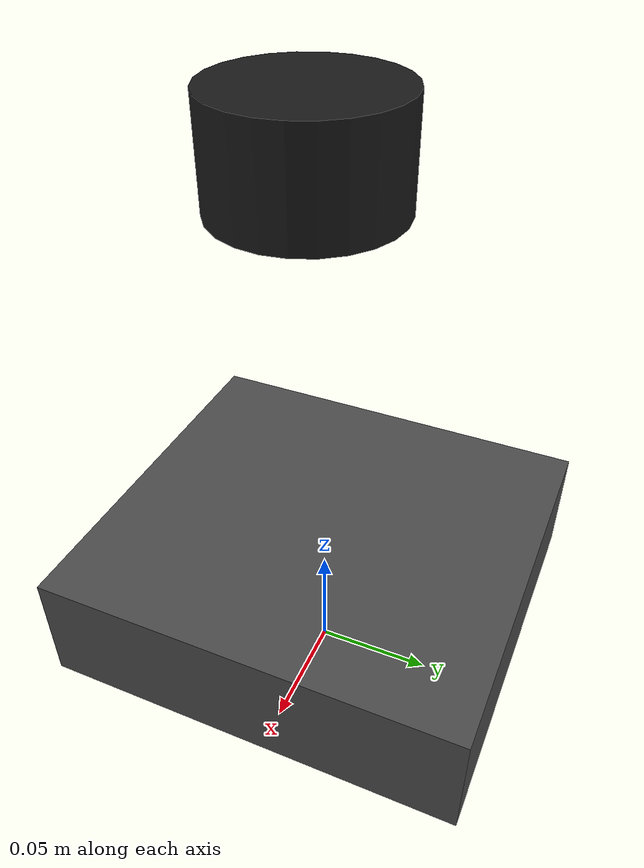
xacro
<?xml version="1.0"?>
<robot xmlns:xacro="http://www.ros.org/wiki/xacro" name="zeuscar">

  <!-- ========== パラメータ定義 ========== -->

  <!-- ロボット本体寸法 (m) -->
  <xacro:property name="body_length" value="0.163"/>
  <xacro:property name="body_width" value="0.177"/>
  <xacro:property name="body_height" value="0.05"/>

  <!-- base_linkの地面からの高さ (m) -->
  <!-- ホイール半径が未計測のため、仮値を使用 -->
  <xacro:property name="base_link_height" value="0.05"/>

  <!-- LiDAR取り付け位置 (m) -->
  <xacro:property name="lidar_x" value="0.0035"/>
  <xacro:property name="lidar_y" value="-0.0045"/>
  <xacro:property name="lidar_z" value="0.235"/>
  <xacro:property name="lidar_yaw" value="1.5708"/>

  <!-- LiDAR寸法 (RPLIDAR A1M8概算) -->
  <xacro:property name="lidar_radius" value="0.035"/>
  <xacro:property name="lidar_height" value="0.04"/>

  <!-- IMU取り付け位置 (m) -->
  <!-- 実測値未計測のため仮値を使用 -->
  <xacro:property name="imu_x" value="0.0"/>
  <xacro:property name="imu_y" value="0.0"/>
  <xacro:property name="imu_z" value="0.05"/>

  <!-- ========== リンク定義 ========== -->

  <!-- base_footprint: 地面投影フレーム -->
  <link name="base_footprint"/>

  <!-- base_link: ロボット本体中心 -->
  <link name="base_link">
    <visual>
      <origin xyz="0 0 0" rpy="0 0 0"/>
      <geometry>
        <box size="${body_length} ${body_width} ${body_height}"/>
      </geometry>
      <material name="chassis_color">
        <color rgba="0.3 0.3 0.3 1.0"/>
      </material>
    </visual>
    <collision>
      <origin xyz="0 0 0" rpy="0 0 0"/>
      <geometry>
        <box size="${body_length} ${body_width} ${body_height}"/>
      </geometry>
    </collision>
  </link>

  <!-- laser_frame: LiDARスキャン面 -->
  <link name="laser_frame">
    <visual>
      <origin xyz="0 0 0" rpy="0 0 0"/>
      <geometry>
        <cylinder radius="${lidar_radius}" length="${lidar_height}"/>
      </geometry>
      <material name="lidar_color">
        <color rgba="0.1 0.1 0.1 1.0"/>
      </material>
    </visual>
    <collision>
      <origin xyz="0 0 0" rpy="0 0 0"/>
      <geometry>
        <cylinder radius="${lidar_radius}" length="${lidar_height}"/>
      </geometry>
    </collision>
  </link>

  <!-- ========== ジョイント定義 ========== -->

  <!-- base_footprint → base_link -->
  <joint name="base_footprint_to_base_link" type="fixed">
    <parent link="base_footprint"/>
    <child link="base_link"/>
    <origin xyz="0 0 ${base_link_height}" rpy="0 0 0"/>
  </joint>

  <!-- base_link → laser_frame -->
  <joint name="base_link_to_laser" type="fixed">
    <parent link="base_link"/>
    <child link="laser_frame"/>
    <origin xyz="${lidar_x} ${lidar_y} ${lidar_z - base_link_height}"
            rpy="0 0 ${lidar_yaw}"/>
  </joint>

  <!-- base_link → imu_link -->
  <!--
    IMU取り付け位置（仮値）:
    - X: 0mm（本体中心）
    - Y: 0mm（本体中心）
    - Z: 50mm（base_linkからの相対高さ）

    NOTE: 実測値が得られたら更新すること
  -->
  <link name="imu_link"/>

  <joint name="base_link_to_imu" type="fixed">
    <parent link="base_link"/>
    <child link="imu_link"/>
    <origin xyz="${imu_x} ${imu_y} ${imu_z}" rpy="0 0 0"/>
  </joint>

</robot>
